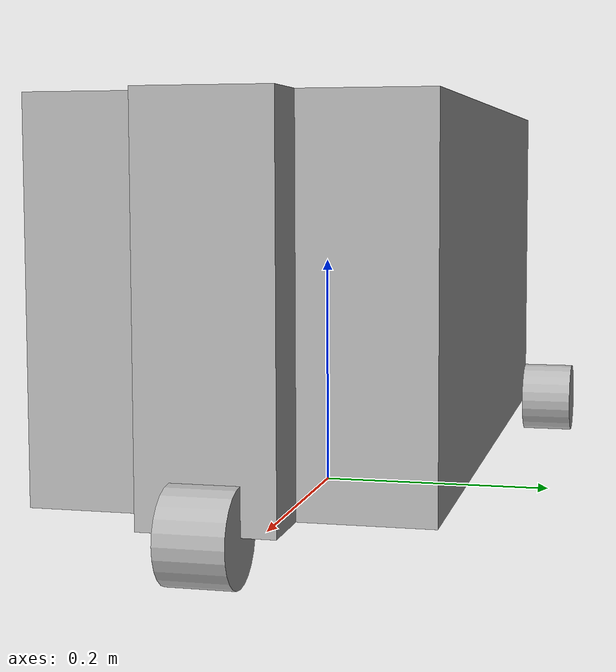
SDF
<?xml version="1.0" ?>
<sdf version="1.6">
  <model name="song">
    <static>false</static>

    <link name="base_link">
      <pose>0 0 0.185 0 0 0</pose>

      <collision name="collision">
        <geometry>
          <box>
            <size>0.6 0.3 0.3</size>
          </box>
        </geometry>
      </collision>
      <visual name="visual">
        <geometry>
          <box>
            <size>0.6 0.3 0.3</size>
          </box>
        </geometry>
      </visual>
    </link>

    <link name="front_caster">
    <pose>0.3 0 0.185 0 0 0</pose>
      <collision name="collision">
        <geometry>
          <box>
            <size>0.1 0.1 0.3</size>
          </box>
        </geometry>
      </collision>
      <visual name="visual">
        <geometry>
          <box>
            <size>0.1 0.1 0.3</size>
          </box>
        </geometry>
      </visual>
    </link>

    <link name="front_wheel">
      <pose>0.35 0 0.035 1.5707 0 0</pose>
      <collision name="collision">
        <geometry>
          <cylinder>
            <length>0.05</length>
            <radius>0.035</radius>
          </cylinder>
        </geometry>
      </collision>
      <visual name="visual">
        <geometry>
          <cylinder>
            <length>0.05</length>
            <radius>0.035</radius>
          </cylinder>
        </geometry>
      </visual>
    </link>

    <link name="back_right_wheel">
      <pose>-0.3 -0.175 0.035 1.5707 0 0</pose>
      <collision name="collision">
        <geometry>
          <cylinder>
            <length>0.05</length>
            <radius>0.035</radius>
          </cylinder>
        </geometry>
      </collision>
      <visual name="visual">
        <geometry>
          <cylinder>
            <length>0.05</length>
            <radius>0.035</radius>
          </cylinder>
        </geometry>
      </visual>
    </link>

    <link name="back_left_wheel">
      <pose>-0.3 0.175 0.035 1.5707 0 0</pose>
      <collision name="collision">
        <geometry>
          <cylinder>
            <length>0.05</length>
            <radius>0.035</radius>
          </cylinder>
        </geometry>
      </collision>
      <visual name="visual">
        <geometry>
          <cylinder>
            <length>0.05</length>
            <radius>0.035</radius>
          </cylinder>
        </geometry>
      </visual>
    </link>

    <joint name = "front_caster_joint" type="fixed">
      <parent>base_link</parent>
      <child>front_caster</child>
    </joint>

    <joint name = "front_wheel_joint" type="revolute">
      <parent>front_caster</parent>
      <child>front_wheel</child>
      <axis>
        <xyz>0 1 0</xyz>
      </axis>
    </joint>

    <joint name = "back_right_wheel_joint" type="revolute">
      <parent>base_link</parent>
      <child>back_right_wheel</child>
      <axis>
        <xyz>0 1 0</xyz>
      </axis>
    </joint>

    <joint name = "back_left_wheel_joint" type="revolute">
      <parent>base_link</parent>
      <child>back_left_wheel</child>
      <axis>
        <xyz>0 1 0</xyz>
      </axis>
    </joint>

  </model>
</sdf>
